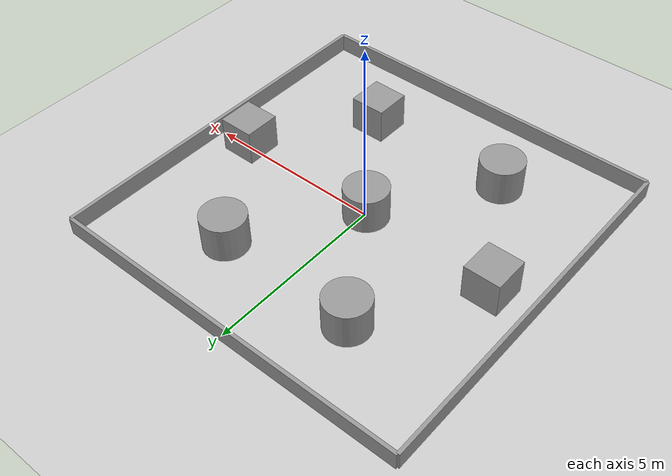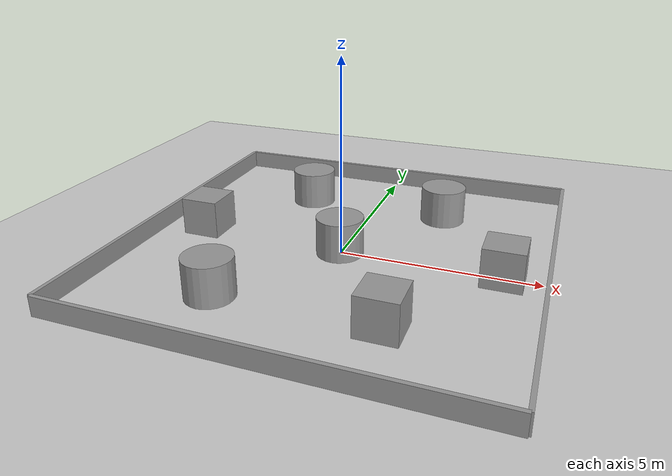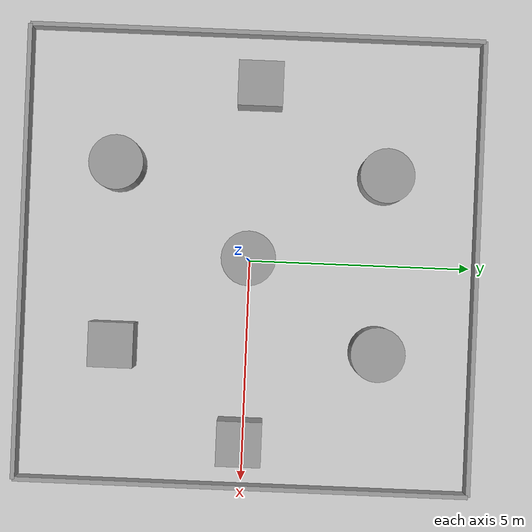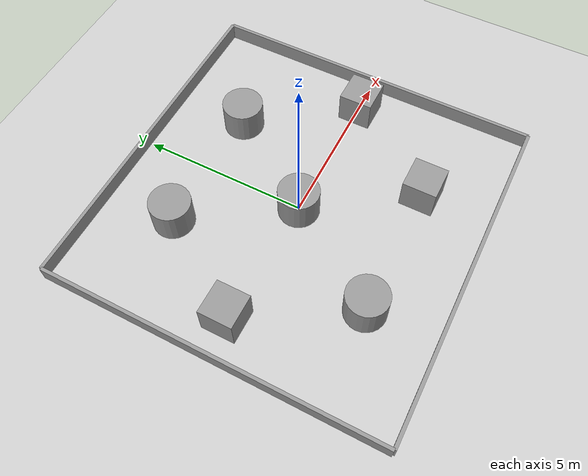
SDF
<sdf version="1.6">
 <world name="default">
  <light name="sun" type="directional">
   <pose>0 0 10 0 -0 0</pose>
   <diffuse>0.8 0.8 0.8 1</diffuse>
   <specular>0.1 0.1 0.1 1</specular>
   <attenuation>
    <range>1000</range>
    <constant>0.9</constant>
    <linear>0.01</linear>
    <quadratic>0.001</quadratic>
   </attenuation>
   <direction>-0.5 0.5 -1</direction>
  </light>
  <model name="ground_plane">
   <static>1</static>
   <link name="link">
    <collision name="collision">
     <geometry><plane><normal>0 0 1</normal><size>100 100</size></plane></geometry>
     <surface><friction><ode><mu>100</mu><mu2>50</mu2></ode></friction></surface>
    </collision>
    <visual name="visual">
     <cast_shadows>0</cast_shadows>
     <geometry><plane><normal>0 0 1</normal><size>100 100</size></plane></geometry>
     <material>
      <script><uri>file://media/materials/scripts/gazebo.material</uri><name>Gazebo/Grey</name></script>
     </material>
    </visual>
   </link>
  </model>
  <gravity>0 0 -9.8</gravity>
  <magnetic_field>6e-06 2.3e-05 -4.2e-05</magnetic_field>
  <atmosphere type="adiabatic"/>
  <physics name="default_physics" default="0" type="ode">
   <max_step_size>0.001</max_step_size>
   <real_time_factor>1</real_time_factor>
   <real_time_update_rate>1000</real_time_update_rate>
  </physics>
  <scene><ambient>0.4 0.4 0.4 1</ambient><background>0.7 0.7 0.7 1</background><shadows>1</shadows></scene>
  <spherical_coordinates>
   <surface_model>EARTH_WGS84</surface_model>
   <latitude_deg>0</latitude_deg>
   <longitude_deg>0</longitude_deg>
   <elevation>0</elevation>
   <heading_deg>0</heading_deg>
  </spherical_coordinates>
  <model name="grey_wall">
   <static>1</static>
   <link name="link">
    <pose>0 0 1.4 0 -0 0</pose>
    <collision name="collision"><geometry><box><size>10.2 0.1 0.5</size></box></geometry></collision>
    <visual name="visual">
     <cast_shadows>0</cast_shadows>
     <geometry><box><size>10.2 0.1 0.5</size></box></geometry>
     <material>
      <script>
       <uri>model://grey_wall/materials/scripts</uri>
       <uri>model://grey_wall/materials/textures</uri>
       <name>vrc/grey_wall</name>
      </script>
     </material>
    </visual>
   </link>
   <pose>0 -5.1 -1.1 0 -0 0</pose>
  </model>
  <model name="grey_wall_0">
   <static>1</static>
   <link name="link">
    <pose>0 0 1.4 0 -0 0</pose>
    <collision name="collision"><geometry><box><size>10.2 0.1 0.5</size></box></geometry></collision>
    <visual name="visual">
     <cast_shadows>0</cast_shadows>
     <geometry><box><size>10.2 0.1 0.5</size></box></geometry>
     <material>
      <script>
       <uri>model://grey_wall/materials/scripts</uri>
       <uri>model://grey_wall/materials/textures</uri>
       <name>vrc/grey_wall</name>
      </script>
     </material>
    </visual>
   </link>
   <pose>5.1 0 -1.1 0 -0 1.57</pose>
  </model>
  <model name="grey_wall_0_clone">
   <static>1</static>
   <link name="link">
    <pose>0 0 1.4 0 -0 0</pose>
    <collision name="collision"><geometry><box><size>10.2 0.1 0.5</size></box></geometry></collision>
    <visual name="visual">
     <cast_shadows>0</cast_shadows>
     <geometry><box><size>10.2 0.1 0.5</size></box></geometry>
     <material>
      <script>
       <uri>model://grey_wall/materials/scripts</uri>
       <uri>model://grey_wall/materials/textures</uri>
       <name>vrc/grey_wall</name>
      </script>
     </material>
    </visual>
   </link>
   <pose>-5.1 0 -1.1 0 -0 1.57</pose>
  </model>
  <model name="grey_wall_clone">
   <static>1</static>
   <link name="link">
    <pose>0 0 1.4 0 -0 0</pose>
    <collision name="collision"><geometry><box><size>10.2 0.1 0.5</size></box></geometry></collision>
    <visual name="visual">
     <cast_shadows>0</cast_shadows>
     <geometry><box><size>10.2 0.1 0.5</size></box></geometry>
     <material>
      <script>
       <uri>model://grey_wall/materials/scripts</uri>
       <uri>model://grey_wall/materials/textures</uri>
       <name>vrc/grey_wall</name>
      </script>
     </material>
    </visual>
   </link>
   <pose>0 5.1 -1.1 0 -0 0</pose>
  </model>
  <audio><device>default</device></audio>
  <model name="unit_cylinder">
   <pose>-0.041321 -0.012776 0.499995 7e-06 -7e-06 0</pose>
   <link name="link">
    <inertial>
     <mass>1</mass>
     <inertia><ixx>0.145833</ixx><ixy>0</ixy><ixz>0</ixz><iyy>0.145833</iyy><iyz>0</iyz><izz>0.125</izz></inertia>
    </inertial>
    <collision name="collision">
     <geometry><cylinder><radius>0.606795</radius><length>1</length></cylinder></geometry>
    </collision>
    <visual name="visual">
     <geometry><cylinder><radius>0.606795</radius><length>1</length></cylinder></geometry>
     <material>
      <script><name>Gazebo/Grey</name><uri>file://media/materials/scripts/gazebo.material</uri></script>
     </material>
    </visual>
   </link>
  </model>
  <model name="unit_cylinder_clone">
   <pose>-2.04642 -3.01144 0.5 -0 -0 -3e-06</pose>
   <link name="link">
    <inertial>
     <mass>1</mass>
     <inertia><ixx>0.145833</ixx><ixy>0</ixy><ixz>0</ixz><iyy>0.145833</iyy><iyz>0</iyz><izz>0.125</izz></inertia>
    </inertial>
    <collision name="collision">
     <geometry><cylinder><radius>0.606793</radius><length>1</length></cylinder></geometry>
    </collision>
    <visual name="visual">
     <geometry><cylinder><radius>0.606793</radius><length>1</length></cylinder></geometry>
     <material>
      <script><name>Gazebo/Grey</name><uri>file://media/materials/scripts/gazebo.material</uri></script>
     </material>
    </visual>
   </link>
  </model>
  <model name="unit_cylinder_clone_0">
   <pose>-1.97963 2.98348 0.5 0 0 -5e-06</pose>
   <link name="link">
    <inertial>
     <mass>1</mass>
     <inertia><ixx>0.145833</ixx><ixy>0</ixy><ixz>0</ixz><iyy>0.145833</iyy><iyz>0</iyz><izz>0.125</izz></inertia>
    </inertial>
    <collision name="collision">
     <geometry><cylinder><radius>0.606793</radius><length>1</length></cylinder></geometry>
    </collision>
    <visual name="visual">
     <geometry><cylinder><radius>0.606793</radius><length>1</length></cylinder></geometry>
     <material>
      <script><name>Gazebo/Grey</name><uri>file://media/materials/scripts/gazebo.material</uri></script>
     </material>
    </visual>
   </link>
  </model>
  <model name="unit_cylinder_clone_1">
   <pose>1.97587 2.92505 0.499991 0 -0 7e-06</pose>
   <link name="link">
    <inertial>
     <mass>1</mass>
     <inertia><ixx>0.145833</ixx><ixy>0</ixy><ixz>0</ixz><iyy>0.145833</iyy><iyz>0</iyz><izz>0.125</izz></inertia>
    </inertial>
    <collision name="collision">
     <geometry><cylinder><radius>0.606793</radius><length>1</length></cylinder></geometry>
    </collision>
    <visual name="visual">
     <geometry><cylinder><radius>0.606793</radius><length>1</length></cylinder></geometry>
     <material>
      <script><name>Gazebo/Grey</name><uri>file://media/materials/scripts/gazebo.material</uri></script>
     </material>
    </visual>
   </link>
  </model>
  <model name="unit_box">
   <pose>1.98665 -2.97633 0.5 0 -0 0</pose>
   <link name="link">
    <inertial>
     <mass>1</mass>
     <inertia>
      <ixx>0.166667</ixx>
      <ixy>0</ixy>
      <ixz>0</ixz>
      <iyy>0.166667</iyy>
      <iyz>0</iyz>
      <izz>0.166667</izz>
     </inertia>
    </inertial>
    <collision name="collision"><geometry><box><size>1 1 1</size></box></geometry></collision>
    <visual name="visual">
     <geometry><box><size>1 1 1</size></box></geometry>
     <material>
      <script><name>Gazebo/Grey</name><uri>file://media/materials/scripts/gazebo.material</uri></script>
     </material>
    </visual>
   </link>
  </model>
  <model name="unit_box_clone">
   <pose>4.06756 -0.064921 0.5 0 -0 0</pose>
   <link name="link">
    <inertial>
     <mass>1</mass>
     <inertia>
      <ixx>0.166667</ixx>
      <ixy>0</ixy>
      <ixz>0</ixz>
      <iyy>0.166667</iyy>
      <iyz>0</iyz>
      <izz>0.166667</izz>
     </inertia>
    </inertial>
    <collision name="collision"><geometry><box><size>1 1 1</size></box></geometry></collision>
    <visual name="visual">
     <geometry><box><size>1 1 1</size></box></geometry>
     <material>
      <script><name>Gazebo/Grey</name><uri>file://media/materials/scripts/gazebo.material</uri></script>
     </material>
    </visual>
   </link>
  </model>
  <model name="unit_box_clone_0">
   <pose>-3.90966 0.110974 0.5 0 -0 0</pose>
   <link name="link">
    <inertial>
     <mass>1</mass>
     <inertia>
      <ixx>0.166667</ixx>
      <ixy>0</ixy>
      <ixz>0</ixz>
      <iyy>0.166667</iyy>
      <iyz>0</iyz>
      <izz>0.166667</izz>
     </inertia>
    </inertial>
    <collision name="collision"><geometry><box><size>1 1 1</size></box></geometry></collision>
    <visual name="visual">
     <geometry><box><size>1 1 1</size></box></geometry>
     <material>
      <script><name>Gazebo/Grey</name><uri>file://media/materials/scripts/gazebo.material</uri></script>
     </material>
    </visual>
   </link>
  </model>
 </world>
</sdf>
